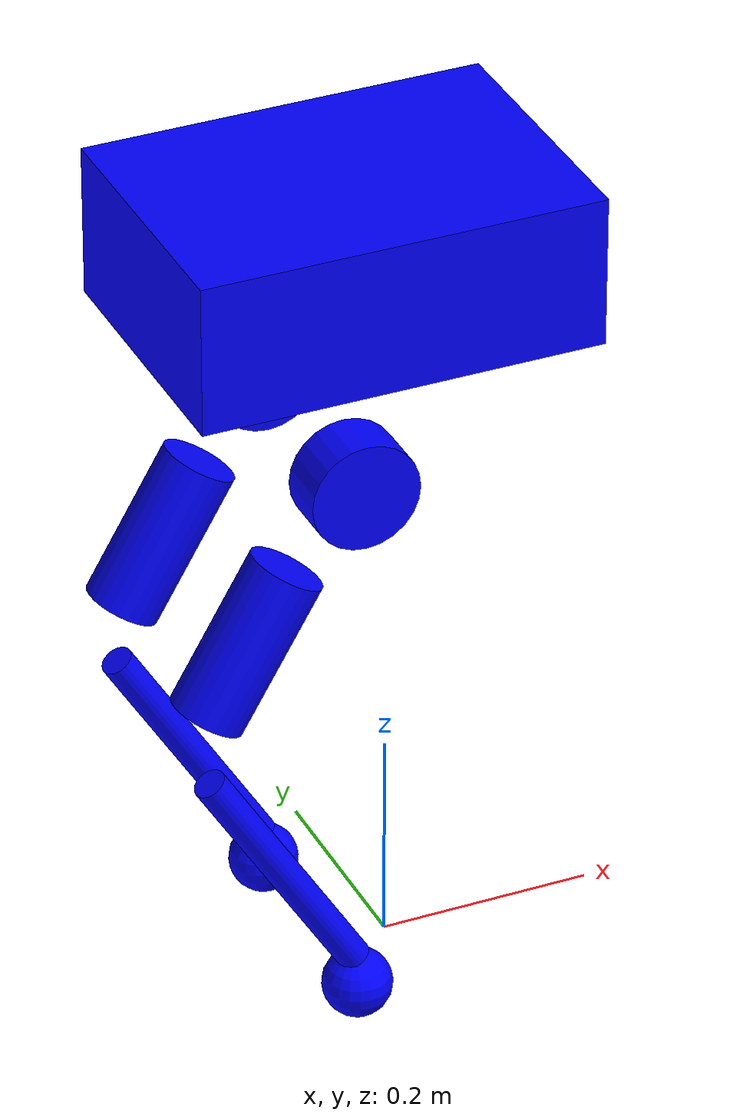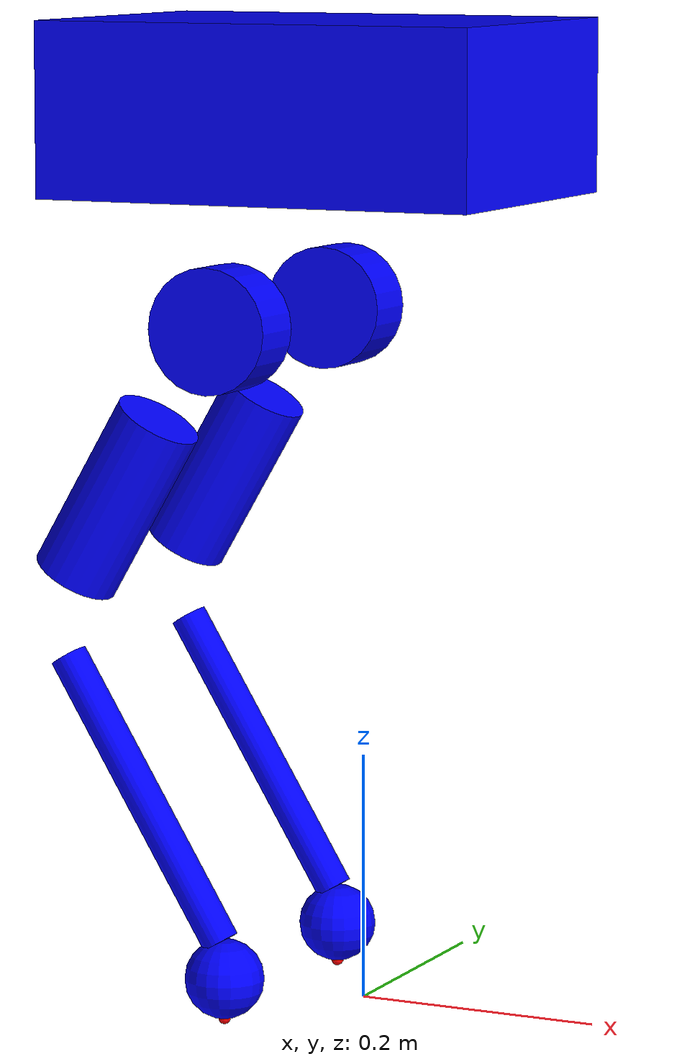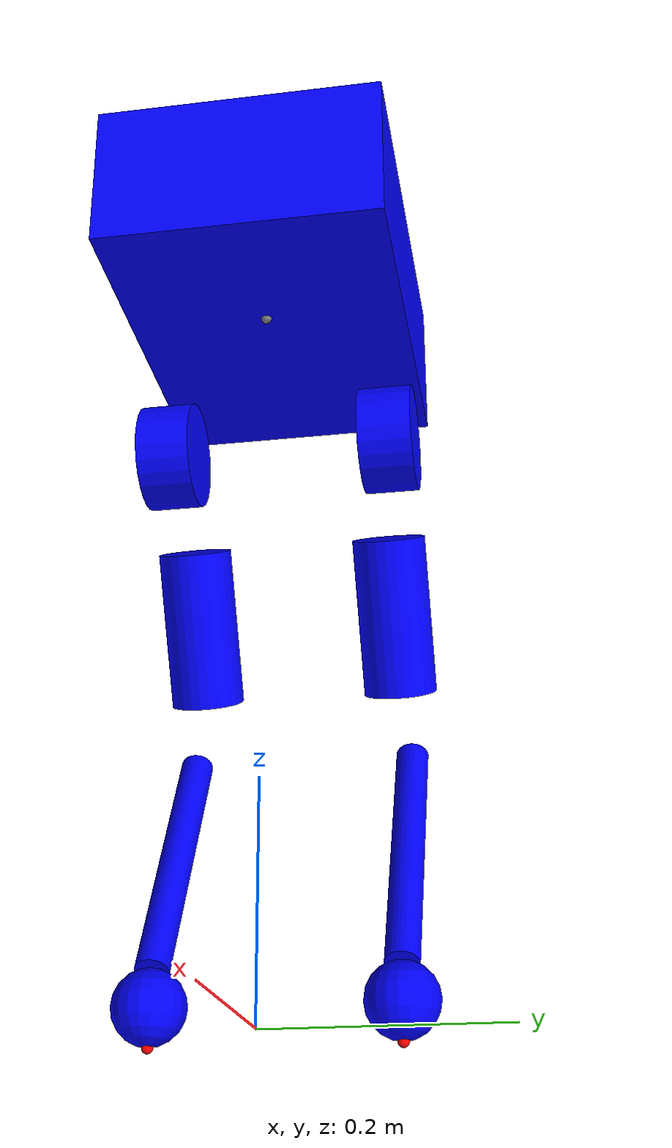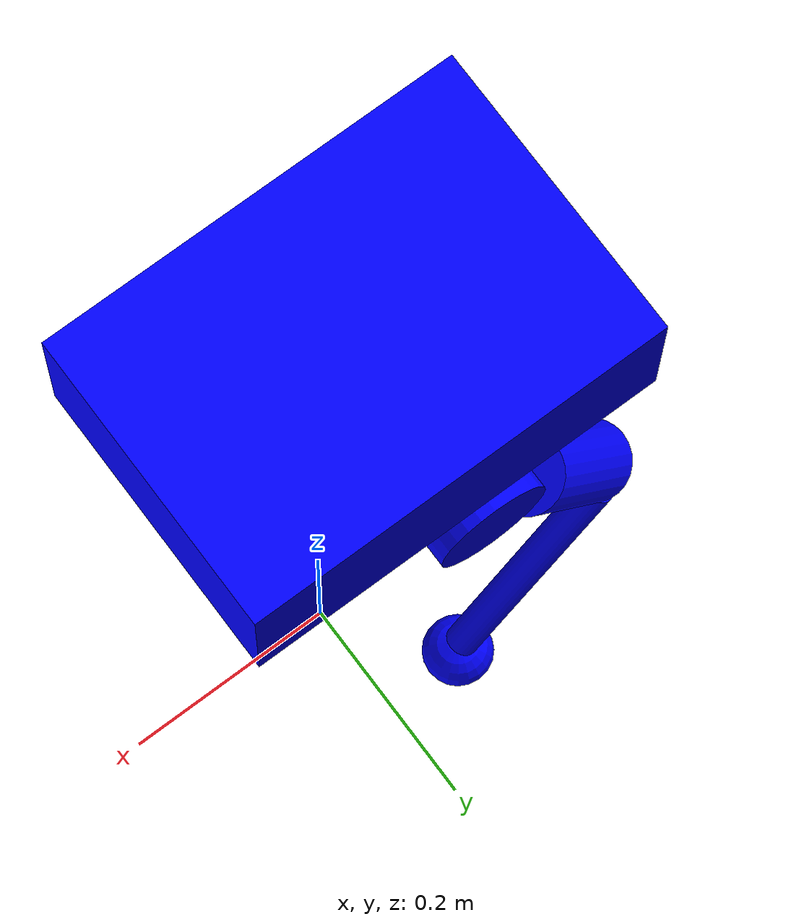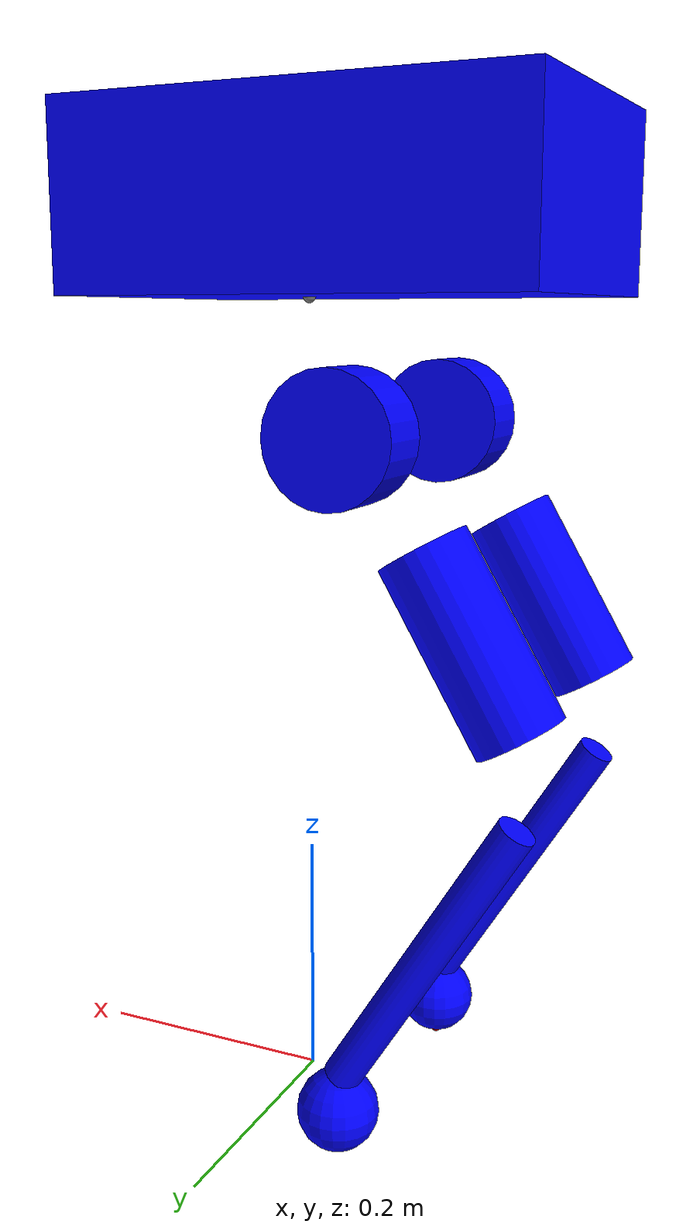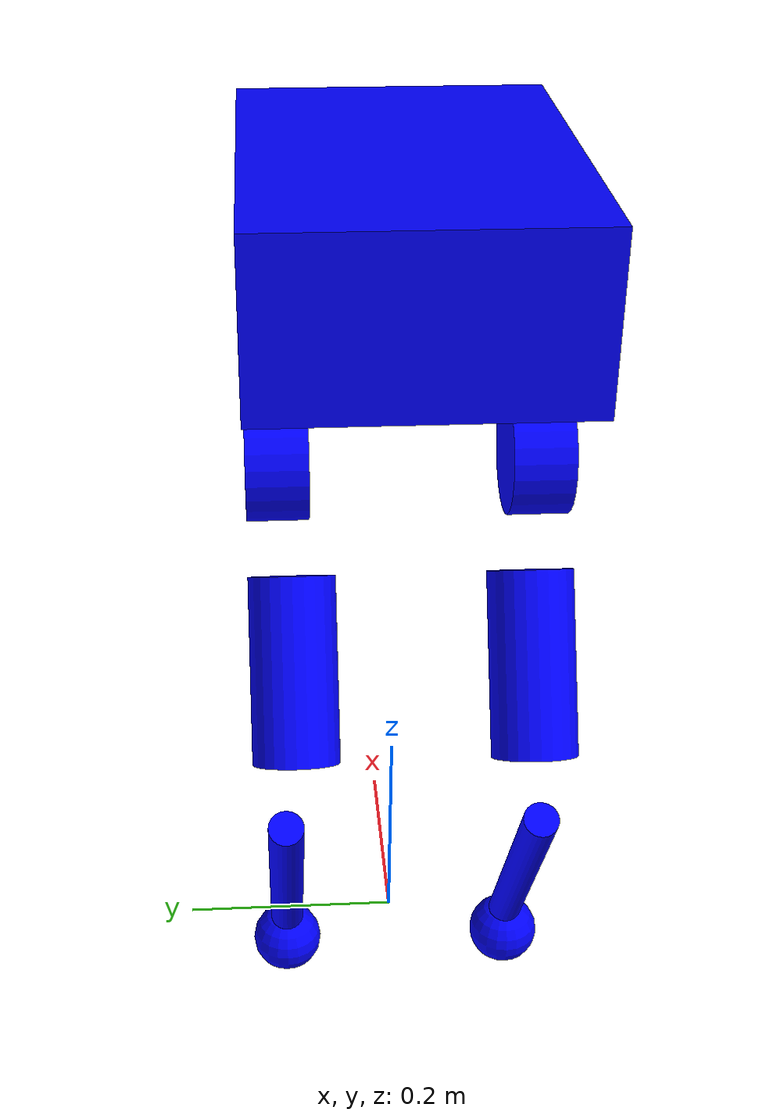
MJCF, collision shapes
<mujoco model="pointfoot">
  <compiler angle="radian" meshdir="assets" autolimits="true"/>

    <default>
        <light castshadow="false" diffuse="1 1 1" />
        <camera fovy="60"/>
        <default class="visual">
            <geom contype="0" conaffinity="0" group="1" type="mesh" rgba="0.9 0.9 0.9 1.0"/>
        </default>
        <geom contype="1" conaffinity="1" condim="3" friction="0.6 0.005 0.0001" rgba="0.5 0.6 0.7 0.0" margin="0.001" group="0" />
    </default>

    <asset>
        <mesh name="base_Link" file="base_Link.STL" />
        <mesh name="abad_L_Link" file="abad_L_Link.STL" />
        <mesh name="hip_L_Link" file="hip_L_Link.STL" />
        <mesh name="knee_L_Link" file="knee_L_Link.STL" />
        <mesh name="foot_L_Link" file="foot_L_Link.STL" />
        <mesh name="abad_R_Link" file="abad_R_Link.STL" />
        <mesh name="hip_R_Link" file="hip_R_Link.STL" />
        <mesh name="knee_R_Link" file="knee_R_Link.STL" />
        <mesh name="foot_R_Link" file="foot_R_Link.STL" />
    </asset>

    <worldbody>

        <body name="base_Link" pos="0 0 0.65">
            <inertial pos="-0.00982508 0.00235738 -0.015272" quat="0.937658 -0.0331911 -0.345796 -0.0109741" mass="9.006" diaginertia="0.141063 0.103771 0.0804952" />
            <freejoint name="floating_base_joint"/>
            <site name="imu" pos="0 0 0"/>
            <geom class="visual" rgba="0.79216 0.81961 0.93333 1" mesh="base_Link" />
            <geom name="base_collision" size="0.185 0.13 0.07" pos="-0.04 0 0.06969" type="box" rgba="0 0 1 0"/>

            <body name="abad_L_Link" pos="0.0042 0.105 -0.09876">
                <inertial pos="-0.06785 0.045853 0.001067" quat="0.598022 0.577826 0.406677 0.378287" mass="1.622" diaginertia="0.00291922 0.00244686 0.00163892" />
                <joint name="abad_L_Joint" pos="0 0 0" axis="1 0 0" limited="true" range="-0.38397 1.39626" />
                <geom class="visual" rgba="0.79216 0.81961 0.93333 1" mesh="abad_L_Link" />
                <geom name="abad_L_collision" size="0.05 0.025" pos="-0.08 0 0" quat="0.707388 0.706825 0 0" type="cylinder" rgba="0 0 1 0" />

                <body name="hip_L_Link" pos="-0.077 0.0205 0">
                    <inertial pos="-0.029468 -0.045739 -0.041923" quat="0.854303 0.19497 0.222006 0.42763" mass="2.401" diaginertia="0.0250687 0.0248125 0.00290381" />
                    <joint name="hip_L_Joint" pos="0 0 0" axis="0 1 0" limited="true" range="-1.01229 1.39626" />
                    <geom class="visual" rgba="1 1 1 1" mesh="hip_L_Link" />
                    <geom name="hip_L_collision" size="0.035 0.075" pos="-0.1 -0.03 -0.14" quat="0.965093 0 0.261909 0" type="cylinder" rgba="0 0 1 0" />

                    <body name="knee_L_Link" pos="-0.15 -0.0205 -0.25981">
                        <inertial pos="0.0684888 -3.1771e-05 -0.113858" quat="0.676994 -0.189727 -0.187539 0.685938" mass="0.734001" diaginertia="0.0109274 0.0108773 0.000216052" />
                        <joint name="knee_L_Joint" pos="0 0 0" axis="0 -1 0" limited="true" range="-0.872665 1.36136" />
                        <geom class="visual" rgba="0.79216 0.81961 0.93333 1" mesh="knee_L_Link" />
                        <geom name="knee_L_collision" size="0.015 0.13" pos="0.078 0 -0.12" quat="0.962425 0 -0.271547 0" type="cylinder" rgba="0 0 1 0"/>

                        <geom class="visual" pos="0.150 0 -0.2598" rgba="0.26667 0.26667 0.26667 1" mesh="foot_L_Link" />
                        <geom name="foot_L_collision" type="sphere" pos="0.14929 0 -0.26014" size="0.032" rgba="0 0 1 0" />
                        <site name="left_foot" pos="0.14929 0 -0.29214" size="0.005" rgba="1 0 0 1" />
                    </body>
                </body>
            </body>

            <body name="abad_R_Link" pos="0.0042 -0.105 -0.09876">
                <inertial pos="-0.06785 -0.045853 0.001067" quat="0.378287 0.406677 0.577826 0.598022" mass="1.622" diaginertia="0.00291922 0.00244686 0.00163892" />
                <joint name="abad_R_Joint" pos="0 0 0" axis="1 0 0" limited="true" range="-1.39626 0.38397" />
                <geom class="visual" rgba="0.79216 0.81961 0.93333 1" mesh="abad_R_Link" />
                <geom name="abad_R_collision" size="0.05 0.025" pos="-0.08 0 0" quat="0.707388 0.706825 0 0" type="cylinder" rgba="0 0 1 0" />

                <body name="hip_R_Link" pos="-0.077 -0.0205 0">
                    <inertial pos="-0.029468 0.045739 -0.041923" quat="0.42763 0.222006 0.19497 0.854303" mass="2.401" diaginertia="0.0250687 0.0248125 0.00290381" />
                    <joint name="hip_R_Joint" pos="0 0 0" axis="0 -1 0" limited="true" range="-1.39626 1.01229" />
                    <geom class="visual" rgba="1 1 1 1" mesh="hip_R_Link" />
                    <geom name="hip_R_collision" size="0.035 0.075" pos="-0.1 0.03 -0.14" quat="0.965093 0 0.261909 0" type="cylinder" rgba="0 0 1 0" />

                    <body name="knee_R_Link" pos="-0.15 0.0205 -0.25981">
                        <inertial pos="0.0684888 3.17711e-05 -0.113858" quat="0.685938 -0.187539 -0.189727 0.676994" mass="0.734001" diaginertia="0.0109274 0.0108773 0.000216052" />
                        <joint name="knee_R_Joint" pos="0 0 0" axis="0 1 0" limited="true" range="-1.36136 0.872665" />
                        <geom class="visual" rgba="0.79216 0.81961 0.93333 1" mesh="knee_R_Link" />
                        <geom name="knee_R_collision" size="0.015 0.13" pos="0.078 0 -0.12" quat="0.962425 0 -0.271547 0" type="cylinder" rgba="0 0 1 0"/>

                        <geom class="visual" pos="0.14929 0 -0.26014" rgba="0.26667 0.26667 0.26667 1" mesh="foot_R_Link" />
                        <geom name="foot_R_collision" type="sphere" pos="0.14929 0 -0.26014" size="0.032" rgba="0 0 1 0" />
                        <site name="right_foot" pos="0.14929 0 -0.29214" size="0.005" rgba="1 0 0 1" />
                    </body>
                </body>
            </body>
        </body>
    </worldbody>
    <sensor>
        <gyro name="imu_ang_vel" site="imu"/>
        <velocimeter name="imu_lin_vel" site="imu"/>
        <accelerometer name="imu_lin_acc" site="imu"/>
        <framezaxis name="imu_upvector" objtype="body" objname="world" reftype="site" refname="imu"/>
        <subtreeangmom name="root_angmom" body="base_Link"/>
    </sensor>
</mujoco>
